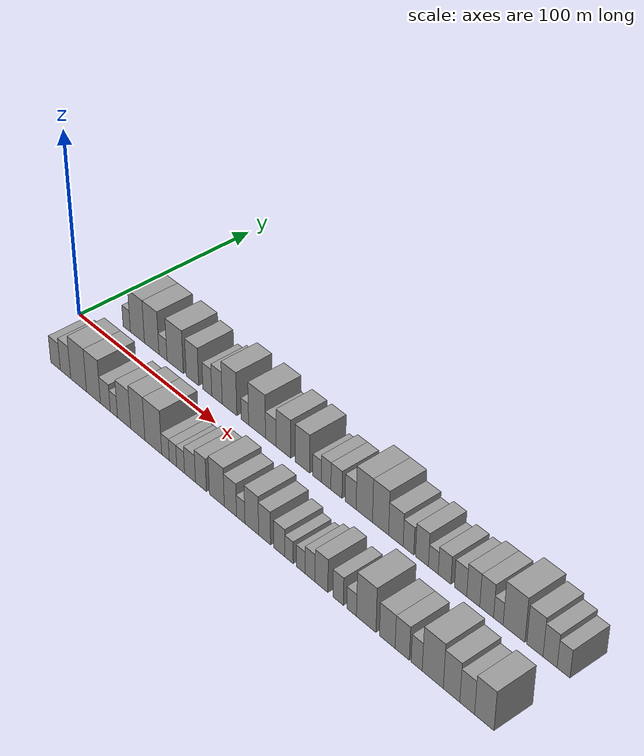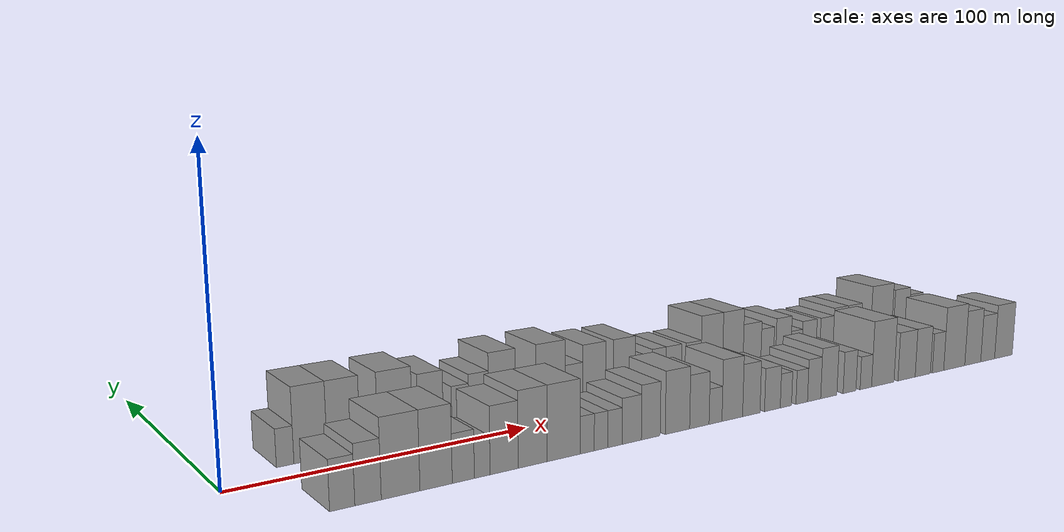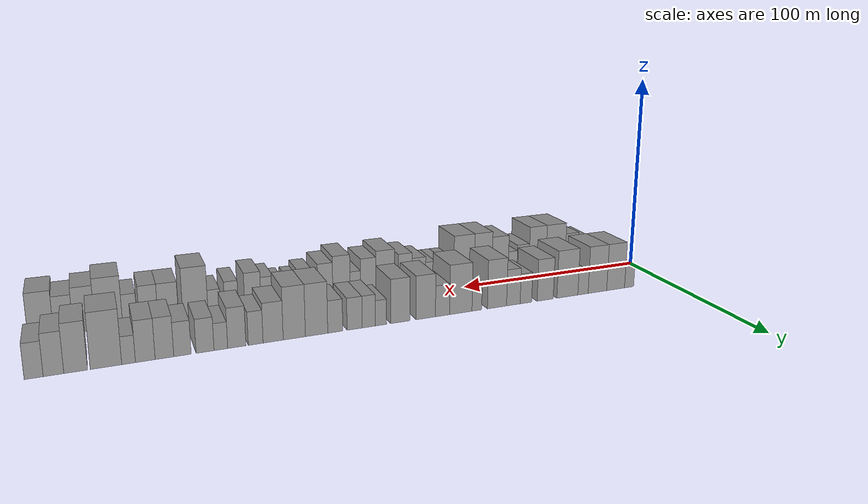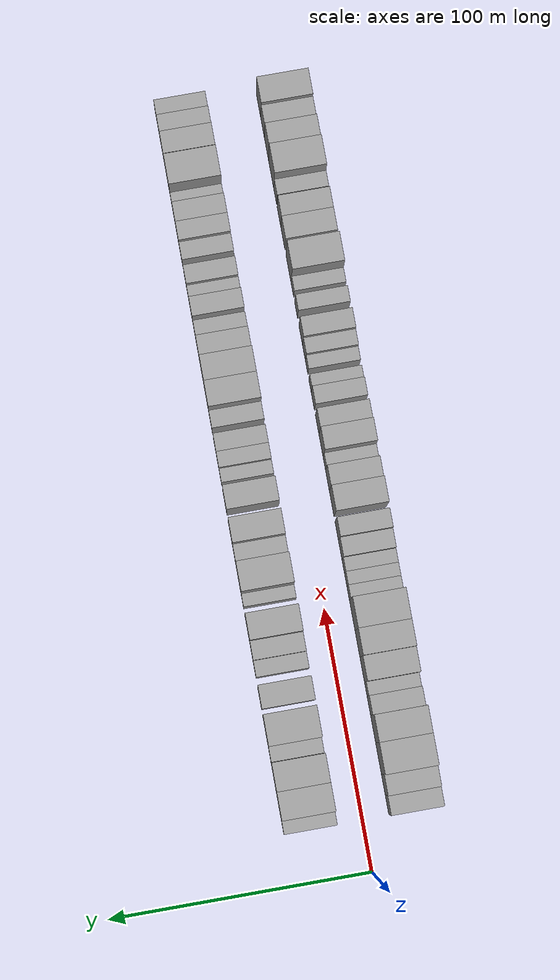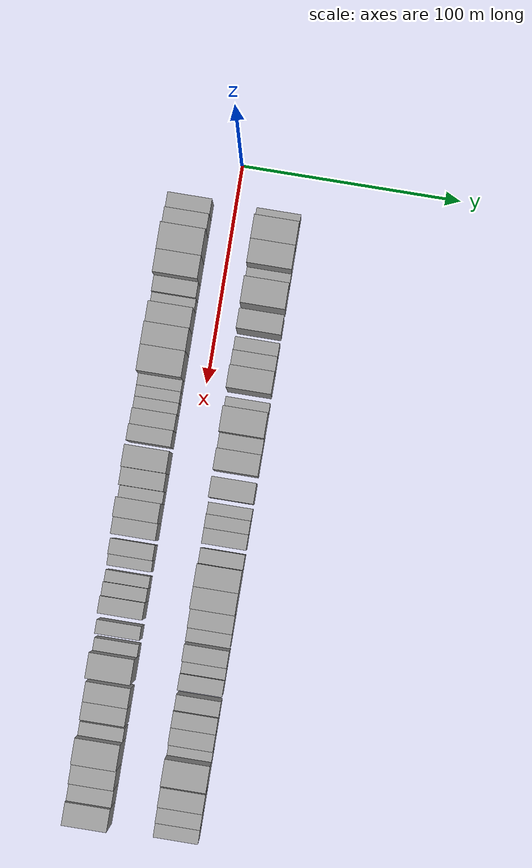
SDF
<sdf version="1.6">
 <world name="default">
  <scene>
   <sky><clouds><speed>12</speed></clouds></sky>
   <ambient>0.4 0.4 0.4 1</ambient>
   <background>0.7 0.7 0.7 1</background>
   <shadows>1</shadows>
  </scene>
  <gravity>0 0 -9.8066</gravity>
  <magnetic_field>6e-06 2.3e-05 -4.2e-05</magnetic_field>
  <physics default="0" name="default_physics" type="ode">
   <ode>
    <solver>
     <type>quick</type>
     <iters>10</iters>
     <sor>1.0</sor>
     <use_dynamic_moi_rescaling>0</use_dynamic_moi_rescaling>
    </solver>
    <constraints>
     <cfm>0</cfm>
     <erp>0.2</erp>
     <contact_max_correcting_vel>100</contact_max_correcting_vel>
     <contact_surface_layer>0.001</contact_surface_layer>
    </constraints>
   </ode>
   <max_step_size>0.004</max_step_size>
   <real_time_factor>1</real_time_factor>
   <real_time_update_rate>250</real_time_update_rate>
  </physics>
  <light name="sun" type="directional">
   <pose>0 0 10 0 0 0</pose>
   <diffuse>0.8 0.8 0.8 1</diffuse>
   <specular>0.2 0.2 0.2 1</specular>
   <attenuation>
    <range>1000</range>
    <constant>0.9</constant>
    <linear>0.01</linear>
    <quadratic>0.001</quadratic>
   </attenuation>
   <direction>-0.5 0.1 -0.9</direction>
  </light>
  <model name="building_1">
   <static>1</static>
   <pose>22.7337 20.0000 0 0.000000 0.000000 1.570796</pose>
   <link name="link">
    <pose>0 0 6.00 0 0 0</pose>
    <collision name="collision"><geometry><box><size>20.0000 5.4673 12.0000</size></box></geometry></collision>
    <visual name="visual">
     <cast_shadows>0</cast_shadows>
     <geometry><box><size>20.0000 5.4673 12.0000</size></box></geometry>
     <material>
      <script>
       <uri>model://grey_wall/materials/scripts</uri>
       <uri>model://grey_wall/materials/textures</uri>
       <name>vrc/grey_wall</name>
      </script>
     </material>
    </visual>
   </link>
  </model>
  <model name="building_2">
   <static>1</static>
   <pose>30.7658 20.0000 0 0.000000 0.000000 1.570796</pose>
   <link name="link">
    <pose>0 0 12.00 0 0 0</pose>
    <collision name="collision"><geometry><box><size>20.0000 10.5969 24.0000</size></box></geometry></collision>
    <visual name="visual">
     <cast_shadows>0</cast_shadows>
     <geometry><box><size>20.0000 10.5969 24.0000</size></box></geometry>
     <material>
      <script>
       <uri>model://grey_wall/materials/scripts</uri>
       <uri>model://grey_wall/materials/textures</uri>
       <name>vrc/grey_wall</name>
      </script>
     </material>
    </visual>
   </link>
  </model>
  <model name="building_3">
   <static>1</static>
   <pose>41.4560 20.0000 0 0.000000 0.000000 1.570796</pose>
   <link name="link">
    <pose>0 0 12.00 0 0 0</pose>
    <collision name="collision"><geometry><box><size>20.0000 10.7837 24.0000</size></box></geometry></collision>
    <visual name="visual">
     <cast_shadows>0</cast_shadows>
     <geometry><box><size>20.0000 10.7837 24.0000</size></box></geometry>
     <material>
      <script>
       <uri>model://grey_wall/materials/scripts</uri>
       <uri>model://grey_wall/materials/textures</uri>
       <name>vrc/grey_wall</name>
      </script>
     </material>
    </visual>
   </link>
  </model>
  <model name="building_4">
   <static>1</static>
   <pose>49.8045 20.0000 0 0.000000 0.000000 1.570796</pose>
   <link name="link">
    <pose>0 0 6.00 0 0 0</pose>
    <collision name="collision"><geometry><box><size>20.0000 5.9133 12.0000</size></box></geometry></collision>
    <visual name="visual">
     <cast_shadows>0</cast_shadows>
     <geometry><box><size>20.0000 5.9133 12.0000</size></box></geometry>
     <material>
      <script>
       <uri>model://grey_wall/materials/scripts</uri>
       <uri>model://grey_wall/materials/textures</uri>
       <name>vrc/grey_wall</name>
      </script>
     </material>
    </visual>
   </link>
  </model>
  <model name="building_5">
   <static>1</static>
   <pose>58.6800 20.0000 0 0.000000 0.000000 1.570796</pose>
   <link name="link">
    <pose>0 0 12.00 0 0 0</pose>
    <collision name="collision"><geometry><box><size>20.0000 11.8378 24.0000</size></box></geometry></collision>
    <visual name="visual">
     <cast_shadows>0</cast_shadows>
     <geometry><box><size>20.0000 11.8378 24.0000</size></box></geometry>
     <material>
      <script>
       <uri>model://grey_wall/materials/scripts</uri>
       <uri>model://grey_wall/materials/textures</uri>
       <name>vrc/grey_wall</name>
      </script>
     </material>
    </visual>
   </link>
  </model>
  <model name="building_6">
   <static>1</static>
   <pose>71.0685 20.0000 0 0.000000 0.000000 1.570796</pose>
   <link name="link">
    <pose>0 0 10.50 0 0 0</pose>
    <collision name="collision"><geometry><box><size>20.0000 8.9391 21.0000</size></box></geometry></collision>
    <visual name="visual">
     <cast_shadows>0</cast_shadows>
     <geometry><box><size>20.0000 8.9391 21.0000</size></box></geometry>
     <material>
      <script>
       <uri>model://grey_wall/materials/scripts</uri>
       <uri>model://grey_wall/materials/textures</uri>
       <name>vrc/grey_wall</name>
      </script>
     </material>
    </visual>
   </link>
  </model>
  <model name="building_7">
   <static>1</static>
   <pose>81.6687 20.0000 0 0.000000 0.000000 1.570796</pose>
   <link name="link">
    <pose>0 0 7.50 0 0 0</pose>
    <collision name="collision"><geometry><box><size>20.0000 6.2614 15.0000</size></box></geometry></collision>
    <visual name="visual">
     <cast_shadows>0</cast_shadows>
     <geometry><box><size>20.0000 6.2614 15.0000</size></box></geometry>
     <material>
      <script>
       <uri>model://grey_wall/materials/scripts</uri>
       <uri>model://grey_wall/materials/textures</uri>
       <name>vrc/grey_wall</name>
      </script>
     </material>
    </visual>
   </link>
  </model>
  <model name="building_8">
   <static>1</static>
   <pose>88.4430 20.0000 0 0.000000 0.000000 1.570796</pose>
   <link name="link">
    <pose>0 0 9.00 0 0 0</pose>
    <collision name="collision"><geometry><box><size>20.0000 7.2872 18.0000</size></box></geometry></collision>
    <visual name="visual">
     <cast_shadows>0</cast_shadows>
     <geometry><box><size>20.0000 7.2872 18.0000</size></box></geometry>
     <material>
      <script>
       <uri>model://grey_wall/materials/scripts</uri>
       <uri>model://grey_wall/materials/textures</uri>
       <name>vrc/grey_wall</name>
      </script>
     </material>
    </visual>
   </link>
  </model>
  <model name="building_9">
   <static>1</static>
   <pose>97.1406 20.0000 0 0.000000 0.000000 1.570796</pose>
   <link name="link">
    <pose>0 0 12.00 0 0 0</pose>
    <collision name="collision"><geometry><box><size>20.0000 10.1078 24.0000</size></box></geometry></collision>
    <visual name="visual">
     <cast_shadows>0</cast_shadows>
     <geometry><box><size>20.0000 10.1078 24.0000</size></box></geometry>
     <material>
      <script>
       <uri>model://grey_wall/materials/scripts</uri>
       <uri>model://grey_wall/materials/textures</uri>
       <name>vrc/grey_wall</name>
      </script>
     </material>
    </visual>
   </link>
  </model>
  <model name="building_10">
   <static>1</static>
   <pose>107.7197 20.0000 0 0.000000 0.000000 1.570796</pose>
   <link name="link">
    <pose>0 0 6.00 0 0 0</pose>
    <collision name="collision"><geometry><box><size>20.0000 5.0505 12.0000</size></box></geometry></collision>
    <visual name="visual">
     <cast_shadows>0</cast_shadows>
     <geometry><box><size>20.0000 5.0505 12.0000</size></box></geometry>
     <material>
      <script>
       <uri>model://grey_wall/materials/scripts</uri>
       <uri>model://grey_wall/materials/textures</uri>
       <name>vrc/grey_wall</name>
      </script>
     </material>
    </visual>
   </link>
  </model>
  <model name="building_11">
   <static>1</static>
   <pose>115.9525 20.0000 0 0.000000 0.000000 1.570796</pose>
   <link name="link">
    <pose>0 0 12.00 0 0 0</pose>
    <collision name="collision"><geometry><box><size>20.0000 11.4151 24.0000</size></box></geometry></collision>
    <visual name="visual">
     <cast_shadows>0</cast_shadows>
     <geometry><box><size>20.0000 11.4151 24.0000</size></box></geometry>
     <material>
      <script>
       <uri>model://grey_wall/materials/scripts</uri>
       <uri>model://grey_wall/materials/textures</uri>
       <name>vrc/grey_wall</name>
      </script>
     </material>
    </visual>
   </link>
  </model>
  <model name="building_12">
   <static>1</static>
   <pose>125.2201 20.0000 0 0.000000 0.000000 1.570796</pose>
   <link name="link">
    <pose>0 0 7.50 0 0 0</pose>
    <collision name="collision"><geometry><box><size>20.0000 7.1200 15.0000</size></box></geometry></collision>
    <visual name="visual">
     <cast_shadows>0</cast_shadows>
     <geometry><box><size>20.0000 7.1200 15.0000</size></box></geometry>
     <material>
      <script>
       <uri>model://grey_wall/materials/scripts</uri>
       <uri>model://grey_wall/materials/textures</uri>
       <name>vrc/grey_wall</name>
      </script>
     </material>
    </visual>
   </link>
  </model>
  <model name="building_13">
   <static>1</static>
   <pose>133.5813 20.0000 0 0.000000 0.000000 1.570796</pose>
   <link name="link">
    <pose>0 0 10.50 0 0 0</pose>
    <collision name="collision"><geometry><box><size>20.0000 9.6024 21.0000</size></box></geometry></collision>
    <visual name="visual">
     <cast_shadows>0</cast_shadows>
     <geometry><box><size>20.0000 9.6024 21.0000</size></box></geometry>
     <material>
      <script>
       <uri>model://grey_wall/materials/scripts</uri>
       <uri>model://grey_wall/materials/textures</uri>
       <name>vrc/grey_wall</name>
      </script>
     </material>
    </visual>
   </link>
  </model>
  <model name="building_14">
   <static>1</static>
   <pose>146.0307 20.0000 0 0.000000 0.000000 1.570796</pose>
   <link name="link">
    <pose>0 0 10.50 0 0 0</pose>
    <collision name="collision"><geometry><box><size>20.0000 9.2964 21.0000</size></box></geometry></collision>
    <visual name="visual">
     <cast_shadows>0</cast_shadows>
     <geometry><box><size>20.0000 9.2964 21.0000</size></box></geometry>
     <material>
      <script>
       <uri>model://grey_wall/materials/scripts</uri>
       <uri>model://grey_wall/materials/textures</uri>
       <name>vrc/grey_wall</name>
      </script>
     </material>
    </visual>
   </link>
  </model>
  <model name="building_15">
   <static>1</static>
   <pose>155.3651 20.0000 0 0.000000 0.000000 1.570796</pose>
   <link name="link">
    <pose>0 0 6.00 0 0 0</pose>
    <collision name="collision"><geometry><box><size>20.0000 5.3725 12.0000</size></box></geometry></collision>
    <visual name="visual">
     <cast_shadows>0</cast_shadows>
     <geometry><box><size>20.0000 5.3725 12.0000</size></box></geometry>
     <material>
      <script>
       <uri>model://grey_wall/materials/scripts</uri>
       <uri>model://grey_wall/materials/textures</uri>
       <name>vrc/grey_wall</name>
      </script>
     </material>
    </visual>
   </link>
  </model>
  <model name="building_16">
   <static>1</static>
   <pose>161.1347 20.0000 0 0.000000 0.000000 1.570796</pose>
   <link name="link">
    <pose>0 0 7.50 0 0 0</pose>
    <collision name="collision"><geometry><box><size>20.0000 6.1667 15.0000</size></box></geometry></collision>
    <visual name="visual">
     <cast_shadows>0</cast_shadows>
     <geometry><box><size>20.0000 6.1667 15.0000</size></box></geometry>
     <material>
      <script>
       <uri>model://grey_wall/materials/scripts</uri>
       <uri>model://grey_wall/materials/textures</uri>
       <name>vrc/grey_wall</name>
      </script>
     </material>
    </visual>
   </link>
  </model>
  <model name="building_17">
   <static>1</static>
   <pose>167.7172 20.0000 0 0.000000 0.000000 1.570796</pose>
   <link name="link">
    <pose>0 0 7.50 0 0 0</pose>
    <collision name="collision"><geometry><box><size>20.0000 6.9982 15.0000</size></box></geometry></collision>
    <visual name="visual">
     <cast_shadows>0</cast_shadows>
     <geometry><box><size>20.0000 6.9982 15.0000</size></box></geometry>
     <material>
      <script>
       <uri>model://grey_wall/materials/scripts</uri>
       <uri>model://grey_wall/materials/textures</uri>
       <name>vrc/grey_wall</name>
      </script>
     </material>
    </visual>
   </link>
  </model>
  <model name="building_18">
   <static>1</static>
   <pose>176.6432 20.0000 0 0.000000 0.000000 1.570796</pose>
   <link name="link">
    <pose>0 0 7.50 0 0 0</pose>
    <collision name="collision"><geometry><box><size>20.0000 6.8539 15.0000</size></box></geometry></collision>
    <visual name="visual">
     <cast_shadows>0</cast_shadows>
     <geometry><box><size>20.0000 6.8539 15.0000</size></box></geometry>
     <material>
      <script>
       <uri>model://grey_wall/materials/scripts</uri>
       <uri>model://grey_wall/materials/textures</uri>
       <name>vrc/grey_wall</name>
      </script>
     </material>
    </visual>
   </link>
  </model>
  <model name="building_19">
   <static>1</static>
   <pose>185.0944 20.0000 0 0.000000 0.000000 1.570796</pose>
   <link name="link">
    <pose>0 0 12.00 0 0 0</pose>
    <collision name="collision"><geometry><box><size>20.0000 10.0486 24.0000</size></box></geometry></collision>
    <visual name="visual">
     <cast_shadows>0</cast_shadows>
     <geometry><box><size>20.0000 10.0486 24.0000</size></box></geometry>
     <material>
      <script>
       <uri>model://grey_wall/materials/scripts</uri>
       <uri>model://grey_wall/materials/textures</uri>
       <name>vrc/grey_wall</name>
      </script>
     </material>
    </visual>
   </link>
  </model>
  <model name="building_20">
   <static>1</static>
   <pose>195.0216 20.0000 0 0.000000 0.000000 1.570796</pose>
   <link name="link">
    <pose>0 0 12.00 0 0 0</pose>
    <collision name="collision"><geometry><box><size>20.0000 9.8058 24.0000</size></box></geometry></collision>
    <visual name="visual">
     <cast_shadows>0</cast_shadows>
     <geometry><box><size>20.0000 9.8058 24.0000</size></box></geometry>
     <material>
      <script>
       <uri>model://grey_wall/materials/scripts</uri>
       <uri>model://grey_wall/materials/textures</uri>
       <name>vrc/grey_wall</name>
      </script>
     </material>
    </visual>
   </link>
  </model>
  <model name="building_21">
   <static>1</static>
   <pose>204.2765 20.0000 0 0.000000 0.000000 1.570796</pose>
   <link name="link">
    <pose>0 0 9.00 0 0 0</pose>
    <collision name="collision"><geometry><box><size>20.0000 8.7040 18.0000</size></box></geometry></collision>
    <visual name="visual">
     <cast_shadows>0</cast_shadows>
     <geometry><box><size>20.0000 8.7040 18.0000</size></box></geometry>
     <material>
      <script>
       <uri>model://grey_wall/materials/scripts</uri>
       <uri>model://grey_wall/materials/textures</uri>
       <name>vrc/grey_wall</name>
      </script>
     </material>
    </visual>
   </link>
  </model>
  <model name="building_22">
   <static>1</static>
   <pose>211.7917 20.0000 0 0.000000 0.000000 1.570796</pose>
   <link name="link">
    <pose>0 0 7.50 0 0 0</pose>
    <collision name="collision"><geometry><box><size>20.0000 6.3265 15.0000</size></box></geometry></collision>
    <visual name="visual">
     <cast_shadows>0</cast_shadows>
     <geometry><box><size>20.0000 6.3265 15.0000</size></box></geometry>
     <material>
      <script>
       <uri>model://grey_wall/materials/scripts</uri>
       <uri>model://grey_wall/materials/textures</uri>
       <name>vrc/grey_wall</name>
      </script>
     </material>
    </visual>
   </link>
  </model>
  <model name="building_23">
   <static>1</static>
   <pose>219.7814 20.0000 0 0.000000 0.000000 1.570796</pose>
   <link name="link">
    <pose>0 0 9.00 0 0 0</pose>
    <collision name="collision"><geometry><box><size>20.0000 7.6528 18.0000</size></box></geometry></collision>
    <visual name="visual">
     <cast_shadows>0</cast_shadows>
     <geometry><box><size>20.0000 7.6528 18.0000</size></box></geometry>
     <material>
      <script>
       <uri>model://grey_wall/materials/scripts</uri>
       <uri>model://grey_wall/materials/textures</uri>
       <name>vrc/grey_wall</name>
      </script>
     </material>
    </visual>
   </link>
  </model>
  <model name="building_24">
   <static>1</static>
   <pose>226.4473 20.0000 0 0.000000 0.000000 1.570796</pose>
   <link name="link">
    <pose>0 0 6.00 0 0 0</pose>
    <collision name="collision"><geometry><box><size>20.0000 5.6790 12.0000</size></box></geometry></collision>
    <visual name="visual">
     <cast_shadows>0</cast_shadows>
     <geometry><box><size>20.0000 5.6790 12.0000</size></box></geometry>
     <material>
      <script>
       <uri>model://grey_wall/materials/scripts</uri>
       <uri>model://grey_wall/materials/textures</uri>
       <name>vrc/grey_wall</name>
      </script>
     </material>
    </visual>
   </link>
  </model>
  <model name="building_25">
   <static>1</static>
   <pose>232.9609 20.0000 0 0.000000 0.000000 1.570796</pose>
   <link name="link">
    <pose>0 0 7.50 0 0 0</pose>
    <collision name="collision"><geometry><box><size>20.0000 7.3481 15.0000</size></box></geometry></collision>
    <visual name="visual">
     <cast_shadows>0</cast_shadows>
     <geometry><box><size>20.0000 7.3481 15.0000</size></box></geometry>
     <material>
      <script>
       <uri>model://grey_wall/materials/scripts</uri>
       <uri>model://grey_wall/materials/textures</uri>
       <name>vrc/grey_wall</name>
      </script>
     </material>
    </visual>
   </link>
  </model>
  <model name="building_26">
   <static>1</static>
   <pose>242.1310 20.0000 0 0.000000 0.000000 1.570796</pose>
   <link name="link">
    <pose>0 0 7.50 0 0 0</pose>
    <collision name="collision"><geometry><box><size>20.0000 6.9921 15.0000</size></box></geometry></collision>
    <visual name="visual">
     <cast_shadows>0</cast_shadows>
     <geometry><box><size>20.0000 6.9921 15.0000</size></box></geometry>
     <material>
      <script>
       <uri>model://grey_wall/materials/scripts</uri>
       <uri>model://grey_wall/materials/textures</uri>
       <name>vrc/grey_wall</name>
      </script>
     </material>
    </visual>
   </link>
  </model>
  <model name="building_27">
   <static>1</static>
   <pose>249.3128 20.0000 0 0.000000 0.000000 1.570796</pose>
   <link name="link">
    <pose>0 0 9.00 0 0 0</pose>
    <collision name="collision"><geometry><box><size>20.0000 7.3713 18.0000</size></box></geometry></collision>
    <visual name="visual">
     <cast_shadows>0</cast_shadows>
     <geometry><box><size>20.0000 7.3713 18.0000</size></box></geometry>
     <material>
      <script>
       <uri>model://grey_wall/materials/scripts</uri>
       <uri>model://grey_wall/materials/textures</uri>
       <name>vrc/grey_wall</name>
      </script>
     </material>
    </visual>
   </link>
  </model>
  <model name="building_28">
   <static>1</static>
   <pose>256.8416 20.0000 0 0.000000 0.000000 1.570796</pose>
   <link name="link">
    <pose>0 0 9.00 0 0 0</pose>
    <collision name="collision"><geometry><box><size>20.0000 7.6865 18.0000</size></box></geometry></collision>
    <visual name="visual">
     <cast_shadows>0</cast_shadows>
     <geometry><box><size>20.0000 7.6865 18.0000</size></box></geometry>
     <material>
      <script>
       <uri>model://grey_wall/materials/scripts</uri>
       <uri>model://grey_wall/materials/textures</uri>
       <name>vrc/grey_wall</name>
      </script>
     </material>
    </visual>
   </link>
  </model>
  <model name="building_29">
   <static>1</static>
   <pose>263.3319 20.0000 0 0.000000 0.000000 1.570796</pose>
   <link name="link">
    <pose>0 0 6.00 0 0 0</pose>
    <collision name="collision"><geometry><box><size>20.0000 5.2941 12.0000</size></box></geometry></collision>
    <visual name="visual">
     <cast_shadows>0</cast_shadows>
     <geometry><box><size>20.0000 5.2941 12.0000</size></box></geometry>
     <material>
      <script>
       <uri>model://grey_wall/materials/scripts</uri>
       <uri>model://grey_wall/materials/textures</uri>
       <name>vrc/grey_wall</name>
      </script>
     </material>
    </visual>
   </link>
  </model>
  <model name="building_30">
   <static>1</static>
   <pose>271.9318 20.0000 0 0.000000 0.000000 1.570796</pose>
   <link name="link">
    <pose>0 0 12.00 0 0 0</pose>
    <collision name="collision"><geometry><box><size>20.0000 11.9057 24.0000</size></box></geometry></collision>
    <visual name="visual">
     <cast_shadows>0</cast_shadows>
     <geometry><box><size>20.0000 11.9057 24.0000</size></box></geometry>
     <material>
      <script>
       <uri>model://grey_wall/materials/scripts</uri>
       <uri>model://grey_wall/materials/textures</uri>
       <name>vrc/grey_wall</name>
      </script>
     </material>
    </visual>
   </link>
  </model>
  <model name="building_31">
   <static>1</static>
   <pose>283.2652 20.0000 0 0.000000 0.000000 1.570796</pose>
   <link name="link">
    <pose>0 0 10.50 0 0 0</pose>
    <collision name="collision"><geometry><box><size>20.0000 8.7612 21.0000</size></box></geometry></collision>
    <visual name="visual">
     <cast_shadows>0</cast_shadows>
     <geometry><box><size>20.0000 8.7612 21.0000</size></box></geometry>
     <material>
      <script>
       <uri>model://grey_wall/materials/scripts</uri>
       <uri>model://grey_wall/materials/textures</uri>
       <name>vrc/grey_wall</name>
      </script>
     </material>
    </visual>
   </link>
  </model>
  <model name="building_32">
   <static>1</static>
   <pose>291.3849 20.0000 0 0.000000 0.000000 1.570796</pose>
   <link name="link">
    <pose>0 0 9.00 0 0 0</pose>
    <collision name="collision"><geometry><box><size>20.0000 7.4781 18.0000</size></box></geometry></collision>
    <visual name="visual">
     <cast_shadows>0</cast_shadows>
     <geometry><box><size>20.0000 7.4781 18.0000</size></box></geometry>
     <material>
      <script>
       <uri>model://grey_wall/materials/scripts</uri>
       <uri>model://grey_wall/materials/textures</uri>
       <name>vrc/grey_wall</name>
      </script>
     </material>
    </visual>
   </link>
  </model>
  <model name="building_33">
   <static>1</static>
   <pose>298.5321 20.0000 0 0.000000 0.000000 1.570796</pose>
   <link name="link">
    <pose>0 0 7.50 0 0 0</pose>
    <collision name="collision"><geometry><box><size>20.0000 6.8162 15.0000</size></box></geometry></collision>
    <visual name="visual">
     <cast_shadows>0</cast_shadows>
     <geometry><box><size>20.0000 6.8162 15.0000</size></box></geometry>
     <material>
      <script>
       <uri>model://grey_wall/materials/scripts</uri>
       <uri>model://grey_wall/materials/textures</uri>
       <name>vrc/grey_wall</name>
      </script>
     </material>
    </visual>
   </link>
  </model>
  <model name="building_34">
   <static>1</static>
   <pose>23.6889 -20.0000 0 0.000000 0.000000 1.570796</pose>
   <link name="link">
    <pose>0 0 7.50 0 0 0</pose>
    <collision name="collision"><geometry><box><size>20.0000 7.3778 15.0000</size></box></geometry></collision>
    <visual name="visual">
     <cast_shadows>0</cast_shadows>
     <geometry><box><size>20.0000 7.3778 15.0000</size></box></geometry>
     <material>
      <script>
       <uri>model://grey_wall/materials/scripts</uri>
       <uri>model://grey_wall/materials/textures</uri>
       <name>vrc/grey_wall</name>
      </script>
     </material>
    </visual>
   </link>
  </model>
  <model name="building_35">
   <static>1</static>
   <pose>31.3292 -20.0000 0 0.000000 0.000000 1.570796</pose>
   <link name="link">
    <pose>0 0 9.00 0 0 0</pose>
    <collision name="collision"><geometry><box><size>20.0000 7.9028 18.0000</size></box></geometry></collision>
    <visual name="visual">
     <cast_shadows>0</cast_shadows>
     <geometry><box><size>20.0000 7.9028 18.0000</size></box></geometry>
     <material>
      <script>
       <uri>model://grey_wall/materials/scripts</uri>
       <uri>model://grey_wall/materials/textures</uri>
       <name>vrc/grey_wall</name>
      </script>
     </material>
    </visual>
   </link>
  </model>
  <model name="building_36">
   <static>1</static>
   <pose>41.2298 -20.0000 0 0.000000 0.000000 1.570796</pose>
   <link name="link">
    <pose>0 0 12.00 0 0 0</pose>
    <collision name="collision"><geometry><box><size>20.0000 11.8984 24.0000</size></box></geometry></collision>
    <visual name="visual">
     <cast_shadows>0</cast_shadows>
     <geometry><box><size>20.0000 11.8984 24.0000</size></box></geometry>
     <material>
      <script>
       <uri>model://grey_wall/materials/scripts</uri>
       <uri>model://grey_wall/materials/textures</uri>
       <name>vrc/grey_wall</name>
      </script>
     </material>
    </visual>
   </link>
  </model>
  <model name="building_37">
   <static>1</static>
   <pose>52.3136 -20.0000 0 0.000000 0.000000 1.570796</pose>
   <link name="link">
    <pose>0 0 12.00 0 0 0</pose>
    <collision name="collision"><geometry><box><size>20.0000 10.2692 24.0000</size></box></geometry></collision>
    <visual name="visual">
     <cast_shadows>0</cast_shadows>
     <geometry><box><size>20.0000 10.2692 24.0000</size></box></geometry>
     <material>
      <script>
       <uri>model://grey_wall/materials/scripts</uri>
       <uri>model://grey_wall/materials/textures</uri>
       <name>vrc/grey_wall</name>
      </script>
     </material>
    </visual>
   </link>
  </model>
  <model name="building_38">
   <static>1</static>
   <pose>61.0539 -20.0000 0 0.000000 0.000000 1.570796</pose>
   <link name="link">
    <pose>0 0 7.50 0 0 0</pose>
    <collision name="collision"><geometry><box><size>20.0000 7.2115 15.0000</size></box></geometry></collision>
    <visual name="visual">
     <cast_shadows>0</cast_shadows>
     <geometry><box><size>20.0000 7.2115 15.0000</size></box></geometry>
     <material>
      <script>
       <uri>model://grey_wall/materials/scripts</uri>
       <uri>model://grey_wall/materials/textures</uri>
       <name>vrc/grey_wall</name>
      </script>
     </material>
    </visual>
   </link>
  </model>
  <model name="building_39">
   <static>1</static>
   <pose>67.2679 -20.0000 0 0.000000 0.000000 1.570796</pose>
   <link name="link">
    <pose>0 0 6.00 0 0 0</pose>
    <collision name="collision"><geometry><box><size>20.0000 5.2165 12.0000</size></box></geometry></collision>
    <visual name="visual">
     <cast_shadows>0</cast_shadows>
     <geometry><box><size>20.0000 5.2165 12.0000</size></box></geometry>
     <material>
      <script>
       <uri>model://grey_wall/materials/scripts</uri>
       <uri>model://grey_wall/materials/textures</uri>
       <name>vrc/grey_wall</name>
      </script>
     </material>
    </visual>
   </link>
  </model>
  <model name="building_40">
   <static>1</static>
   <pose>74.6307 -20.0000 0 0.000000 0.000000 1.570796</pose>
   <link name="link">
    <pose>0 0 10.50 0 0 0</pose>
    <collision name="collision"><geometry><box><size>20.0000 9.5090 21.0000</size></box></geometry></collision>
    <visual name="visual">
     <cast_shadows>0</cast_shadows>
     <geometry><box><size>20.0000 9.5090 21.0000</size></box></geometry>
     <material>
      <script>
       <uri>model://grey_wall/materials/scripts</uri>
       <uri>model://grey_wall/materials/textures</uri>
       <name>vrc/grey_wall</name>
      </script>
     </material>
    </visual>
   </link>
  </model>
  <model name="building_41">
   <static>1</static>
   <pose>84.4495 -20.0000 0 0.000000 0.000000 1.570796</pose>
   <link name="link">
    <pose>0 0 12.00 0 0 0</pose>
    <collision name="collision"><geometry><box><size>20.0000 10.1286 24.0000</size></box></geometry></collision>
    <visual name="visual">
     <cast_shadows>0</cast_shadows>
     <geometry><box><size>20.0000 10.1286 24.0000</size></box></geometry>
     <material>
      <script>
       <uri>model://grey_wall/materials/scripts</uri>
       <uri>model://grey_wall/materials/textures</uri>
       <name>vrc/grey_wall</name>
      </script>
     </material>
    </visual>
   </link>
  </model>
  <model name="building_42">
   <static>1</static>
   <pose>95.3755 -20.0000 0 0.000000 0.000000 1.570796</pose>
   <link name="link">
    <pose>0 0 12.00 0 0 0</pose>
    <collision name="collision"><geometry><box><size>20.0000 11.7234 24.0000</size></box></geometry></collision>
    <visual name="visual">
     <cast_shadows>0</cast_shadows>
     <geometry><box><size>20.0000 11.7234 24.0000</size></box></geometry>
     <material>
      <script>
       <uri>model://grey_wall/materials/scripts</uri>
       <uri>model://grey_wall/materials/textures</uri>
       <name>vrc/grey_wall</name>
      </script>
     </material>
    </visual>
   </link>
  </model>
  <model name="building_43">
   <static>1</static>
   <pose>103.8726 -20.0000 0 0.000000 0.000000 1.570796</pose>
   <link name="link">
    <pose>0 0 6.00 0 0 0</pose>
    <collision name="collision"><geometry><box><size>20.0000 5.2709 12.0000</size></box></geometry></collision>
    <visual name="visual">
     <cast_shadows>0</cast_shadows>
     <geometry><box><size>20.0000 5.2709 12.0000</size></box></geometry>
     <material>
      <script>
       <uri>model://grey_wall/materials/scripts</uri>
       <uri>model://grey_wall/materials/textures</uri>
       <name>vrc/grey_wall</name>
      </script>
     </material>
    </visual>
   </link>
  </model>
  <model name="building_44">
   <static>1</static>
   <pose>109.0506 -20.0000 0 0.000000 0.000000 1.570796</pose>
   <link name="link">
    <pose>0 0 6.00 0 0 0</pose>
    <collision name="collision"><geometry><box><size>20.0000 5.0851 12.0000</size></box></geometry></collision>
    <visual name="visual">
     <cast_shadows>0</cast_shadows>
     <geometry><box><size>20.0000 5.0851 12.0000</size></box></geometry>
     <material>
      <script>
       <uri>model://grey_wall/materials/scripts</uri>
       <uri>model://grey_wall/materials/textures</uri>
       <name>vrc/grey_wall</name>
      </script>
     </material>
    </visual>
   </link>
  </model>
  <model name="building_45">
   <static>1</static>
   <pose>114.2787 -20.0000 0 0.000000 0.000000 1.570796</pose>
   <link name="link">
    <pose>0 0 6.00 0 0 0</pose>
    <collision name="collision"><geometry><box><size>20.0000 5.3710 12.0000</size></box></geometry></collision>
    <visual name="visual">
     <cast_shadows>0</cast_shadows>
     <geometry><box><size>20.0000 5.3710 12.0000</size></box></geometry>
     <material>
      <script>
       <uri>model://grey_wall/materials/scripts</uri>
       <uri>model://grey_wall/materials/textures</uri>
       <name>vrc/grey_wall</name>
      </script>
     </material>
    </visual>
   </link>
  </model>
  <model name="building_46">
   <static>1</static>
   <pose>120.6586 -20.0000 0 0.000000 0.000000 1.570796</pose>
   <link name="link">
    <pose>0 0 7.50 0 0 0</pose>
    <collision name="collision"><geometry><box><size>20.0000 7.3889 15.0000</size></box></geometry></collision>
    <visual name="visual">
     <cast_shadows>0</cast_shadows>
     <geometry><box><size>20.0000 7.3889 15.0000</size></box></geometry>
     <material>
      <script>
       <uri>model://grey_wall/materials/scripts</uri>
       <uri>model://grey_wall/materials/textures</uri>
       <name>vrc/grey_wall</name>
      </script>
     </material>
    </visual>
   </link>
  </model>
  <model name="building_47">
   <static>1</static>
   <pose>128.0381 -20.0000 0 0.000000 0.000000 1.570796</pose>
   <link name="link">
    <pose>0 0 9.00 0 0 0</pose>
    <collision name="collision"><geometry><box><size>20.0000 7.3701 18.0000</size></box></geometry></collision>
    <visual name="visual">
     <cast_shadows>0</cast_shadows>
     <geometry><box><size>20.0000 7.3701 18.0000</size></box></geometry>
     <material>
      <script>
       <uri>model://grey_wall/materials/scripts</uri>
       <uri>model://grey_wall/materials/textures</uri>
       <name>vrc/grey_wall</name>
      </script>
     </material>
    </visual>
   </link>
  </model>
  <model name="building_48">
   <static>1</static>
   <pose>138.6383 -20.0000 0 0.000000 0.000000 1.570796</pose>
   <link name="link">
    <pose>0 0 10.50 0 0 0</pose>
    <collision name="collision"><geometry><box><size>20.0000 9.8302 21.0000</size></box></geometry></collision>
    <visual name="visual">
     <cast_shadows>0</cast_shadows>
     <geometry><box><size>20.0000 9.8302 21.0000</size></box></geometry>
     <material>
      <script>
       <uri>model://grey_wall/materials/scripts</uri>
       <uri>model://grey_wall/materials/textures</uri>
       <name>vrc/grey_wall</name>
      </script>
     </material>
    </visual>
   </link>
  </model>
  <model name="building_49">
   <static>1</static>
   <pose>147.5614 -20.0000 0 0.000000 0.000000 1.570796</pose>
   <link name="link">
    <pose>0 0 9.00 0 0 0</pose>
    <collision name="collision"><geometry><box><size>20.0000 8.0161 18.0000</size></box></geometry></collision>
    <visual name="visual">
     <cast_shadows>0</cast_shadows>
     <geometry><box><size>20.0000 8.0161 18.0000</size></box></geometry>
     <material>
      <script>
       <uri>model://grey_wall/materials/scripts</uri>
       <uri>model://grey_wall/materials/textures</uri>
       <name>vrc/grey_wall</name>
      </script>
     </material>
    </visual>
   </link>
  </model>
  <model name="building_50">
   <static>1</static>
   <pose>154.2818 -20.0000 0 0.000000 0.000000 1.570796</pose>
   <link name="link">
    <pose>0 0 6.00 0 0 0</pose>
    <collision name="collision"><geometry><box><size>20.0000 5.4246 12.0000</size></box></geometry></collision>
    <visual name="visual">
     <cast_shadows>0</cast_shadows>
     <geometry><box><size>20.0000 5.4246 12.0000</size></box></geometry>
     <material>
      <script>
       <uri>model://grey_wall/materials/scripts</uri>
       <uri>model://grey_wall/materials/textures</uri>
       <name>vrc/grey_wall</name>
      </script>
     </material>
    </visual>
   </link>
  </model>
  <model name="building_51">
   <static>1</static>
   <pose>161.3955 -20.0000 0 0.000000 0.000000 1.570796</pose>
   <link name="link">
    <pose>0 0 10.50 0 0 0</pose>
    <collision name="collision"><geometry><box><size>20.0000 8.8027 21.0000</size></box></geometry></collision>
    <visual name="visual">
     <cast_shadows>0</cast_shadows>
     <geometry><box><size>20.0000 8.8027 21.0000</size></box></geometry>
     <material>
      <script>
       <uri>model://grey_wall/materials/scripts</uri>
       <uri>model://grey_wall/materials/textures</uri>
       <name>vrc/grey_wall</name>
      </script>
     </material>
    </visual>
   </link>
  </model>
  <model name="building_52">
   <static>1</static>
   <pose>169.5851 -20.0000 0 0.000000 0.000000 1.570796</pose>
   <link name="link">
    <pose>0 0 9.00 0 0 0</pose>
    <collision name="collision"><geometry><box><size>20.0000 7.5765 18.0000</size></box></geometry></collision>
    <visual name="visual">
     <cast_shadows>0</cast_shadows>
     <geometry><box><size>20.0000 7.5765 18.0000</size></box></geometry>
     <material>
      <script>
       <uri>model://grey_wall/materials/scripts</uri>
       <uri>model://grey_wall/materials/textures</uri>
       <name>vrc/grey_wall</name>
      </script>
     </material>
    </visual>
   </link>
  </model>
  <model name="building_53">
   <static>1</static>
   <pose>178.8874 -20.0000 0 0.000000 0.000000 1.570796</pose>
   <link name="link">
    <pose>0 0 7.50 0 0 0</pose>
    <collision name="collision"><geometry><box><size>20.0000 7.0282 15.0000</size></box></geometry></collision>
    <visual name="visual">
     <cast_shadows>0</cast_shadows>
     <geometry><box><size>20.0000 7.0282 15.0000</size></box></geometry>
     <material>
      <script>
       <uri>model://grey_wall/materials/scripts</uri>
       <uri>model://grey_wall/materials/textures</uri>
       <name>vrc/grey_wall</name>
      </script>
     </material>
    </visual>
   </link>
  </model>
  <model name="building_54">
   <static>1</static>
   <pose>184.9580 -20.0000 0 0.000000 0.000000 1.570796</pose>
   <link name="link">
    <pose>0 0 6.00 0 0 0</pose>
    <collision name="collision"><geometry><box><size>20.0000 5.1129 12.0000</size></box></geometry></collision>
    <visual name="visual">
     <cast_shadows>0</cast_shadows>
     <geometry><box><size>20.0000 5.1129 12.0000</size></box></geometry>
     <material>
      <script>
       <uri>model://grey_wall/materials/scripts</uri>
       <uri>model://grey_wall/materials/textures</uri>
       <name>vrc/grey_wall</name>
      </script>
     </material>
    </visual>
   </link>
  </model>
  <model name="building_55">
   <static>1</static>
   <pose>192.1785 -20.0000 0 0.000000 0.000000 1.570796</pose>
   <link name="link">
    <pose>0 0 6.00 0 0 0</pose>
    <collision name="collision"><geometry><box><size>20.0000 5.3281 12.0000</size></box></geometry></collision>
    <visual name="visual">
     <cast_shadows>0</cast_shadows>
     <geometry><box><size>20.0000 5.3281 12.0000</size></box></geometry>
     <material>
      <script>
       <uri>model://grey_wall/materials/scripts</uri>
       <uri>model://grey_wall/materials/textures</uri>
       <name>vrc/grey_wall</name>
      </script>
     </material>
    </visual>
   </link>
  </model>
  <model name="building_56">
   <static>1</static>
   <pose>197.9270 -20.0000 0 0.000000 0.000000 1.570796</pose>
   <link name="link">
    <pose>0 0 7.50 0 0 0</pose>
    <collision name="collision"><geometry><box><size>20.0000 6.1690 15.0000</size></box></geometry></collision>
    <visual name="visual">
     <cast_shadows>0</cast_shadows>
     <geometry><box><size>20.0000 6.1690 15.0000</size></box></geometry>
     <material>
      <script>
       <uri>model://grey_wall/materials/scripts</uri>
       <uri>model://grey_wall/materials/textures</uri>
       <name>vrc/grey_wall</name>
      </script>
     </material>
    </visual>
   </link>
  </model>
  <model name="building_57">
   <static>1</static>
   <pose>204.8581 -20.0000 0 0.000000 0.000000 1.570796</pose>
   <link name="link">
    <pose>0 0 9.00 0 0 0</pose>
    <collision name="collision"><geometry><box><size>20.0000 7.6932 18.0000</size></box></geometry></collision>
    <visual name="visual">
     <cast_shadows>0</cast_shadows>
     <geometry><box><size>20.0000 7.6932 18.0000</size></box></geometry>
     <material>
      <script>
       <uri>model://grey_wall/materials/scripts</uri>
       <uri>model://grey_wall/materials/textures</uri>
       <name>vrc/grey_wall</name>
      </script>
     </material>
    </visual>
   </link>
  </model>
  <model name="building_58">
   <static>1</static>
   <pose>214.8373 -20.0000 0 0.000000 0.000000 1.570796</pose>
   <link name="link">
    <pose>0 0 7.50 0 0 0</pose>
    <collision name="collision"><geometry><box><size>20.0000 6.2652 15.0000</size></box></geometry></collision>
    <visual name="visual">
     <cast_shadows>0</cast_shadows>
     <geometry><box><size>20.0000 6.2652 15.0000</size></box></geometry>
     <material>
      <script>
       <uri>model://grey_wall/materials/scripts</uri>
       <uri>model://grey_wall/materials/textures</uri>
       <name>vrc/grey_wall</name>
      </script>
     </material>
    </visual>
   </link>
  </model>
  <model name="building_59">
   <static>1</static>
   <pose>222.8343 -20.0000 0 0.000000 0.000000 1.570796</pose>
   <link name="link">
    <pose>0 0 6.00 0 0 0</pose>
    <collision name="collision"><geometry><box><size>20.0000 5.7290 12.0000</size></box></geometry></collision>
    <visual name="visual">
     <cast_shadows>0</cast_shadows>
     <geometry><box><size>20.0000 5.7290 12.0000</size></box></geometry>
     <material>
      <script>
       <uri>model://grey_wall/materials/scripts</uri>
       <uri>model://grey_wall/materials/textures</uri>
       <name>vrc/grey_wall</name>
      </script>
     </material>
    </visual>
   </link>
  </model>
  <model name="building_60">
   <static>1</static>
   <pose>231.3630 -20.0000 0 0.000000 0.000000 1.570796</pose>
   <link name="link">
    <pose>0 0 12.00 0 0 0</pose>
    <collision name="collision"><geometry><box><size>20.0000 11.3284 24.0000</size></box></geometry></collision>
    <visual name="visual">
     <cast_shadows>0</cast_shadows>
     <geometry><box><size>20.0000 11.3284 24.0000</size></box></geometry>
     <material>
      <script>
       <uri>model://grey_wall/materials/scripts</uri>
       <uri>model://grey_wall/materials/textures</uri>
       <name>vrc/grey_wall</name>
      </script>
     </material>
    </visual>
   </link>
  </model>
  <model name="building_61">
   <static>1</static>
   <pose>243.5149 -20.0000 0 0.000000 0.000000 1.570796</pose>
   <link name="link">
    <pose>0 0 9.00 0 0 0</pose>
    <collision name="collision"><geometry><box><size>20.0000 8.9752 18.0000</size></box></geometry></collision>
    <visual name="visual">
     <cast_shadows>0</cast_shadows>
     <geometry><box><size>20.0000 8.9752 18.0000</size></box></geometry>
     <material>
      <script>
       <uri>model://grey_wall/materials/scripts</uri>
       <uri>model://grey_wall/materials/textures</uri>
       <name>vrc/grey_wall</name>
      </script>
     </material>
    </visual>
   </link>
  </model>
  <model name="building_62">
   <static>1</static>
   <pose>252.0324 -20.0000 0 0.000000 0.000000 1.570796</pose>
   <link name="link">
    <pose>0 0 9.00 0 0 0</pose>
    <collision name="collision"><geometry><box><size>20.0000 8.0598 18.0000</size></box></geometry></collision>
    <visual name="visual">
     <cast_shadows>0</cast_shadows>
     <geometry><box><size>20.0000 8.0598 18.0000</size></box></geometry>
     <material>
      <script>
       <uri>model://grey_wall/materials/scripts</uri>
       <uri>model://grey_wall/materials/textures</uri>
       <name>vrc/grey_wall</name>
      </script>
     </material>
    </visual>
   </link>
  </model>
  <model name="building_63">
   <static>1</static>
   <pose>260.1530 -20.0000 0 0.000000 0.000000 1.570796</pose>
   <link name="link">
    <pose>0 0 7.50 0 0 0</pose>
    <collision name="collision"><geometry><box><size>20.0000 6.1815 15.0000</size></box></geometry></collision>
    <visual name="visual">
     <cast_shadows>0</cast_shadows>
     <geometry><box><size>20.0000 6.1815 15.0000</size></box></geometry>
     <material>
      <script>
       <uri>model://grey_wall/materials/scripts</uri>
       <uri>model://grey_wall/materials/textures</uri>
       <name>vrc/grey_wall</name>
      </script>
     </material>
    </visual>
   </link>
  </model>
  <model name="building_64">
   <static>1</static>
   <pose>269.0494 -20.0000 0 0.000000 0.000000 1.570796</pose>
   <link name="link">
    <pose>0 0 12.00 0 0 0</pose>
    <collision name="collision"><geometry><box><size>20.0000 11.6114 24.0000</size></box></geometry></collision>
    <visual name="visual">
     <cast_shadows>0</cast_shadows>
     <geometry><box><size>20.0000 11.6114 24.0000</size></box></geometry>
     <material>
      <script>
       <uri>model://grey_wall/materials/scripts</uri>
       <uri>model://grey_wall/materials/textures</uri>
       <name>vrc/grey_wall</name>
      </script>
     </material>
    </visual>
   </link>
  </model>
  <model name="building_65">
   <static>1</static>
   <pose>279.3371 -20.0000 0 0.000000 0.000000 1.570796</pose>
   <link name="link">
    <pose>0 0 10.50 0 0 0</pose>
    <collision name="collision"><geometry><box><size>20.0000 8.9640 21.0000</size></box></geometry></collision>
    <visual name="visual">
     <cast_shadows>0</cast_shadows>
     <geometry><box><size>20.0000 8.9640 21.0000</size></box></geometry>
     <material>
      <script>
       <uri>model://grey_wall/materials/scripts</uri>
       <uri>model://grey_wall/materials/textures</uri>
       <name>vrc/grey_wall</name>
      </script>
     </material>
    </visual>
   </link>
  </model>
  <model name="building_66">
   <static>1</static>
   <pose>287.8031 -20.0000 0 0.000000 0.000000 1.570796</pose>
   <link name="link">
    <pose>0 0 9.00 0 0 0</pose>
    <collision name="collision"><geometry><box><size>20.0000 7.9680 18.0000</size></box></geometry></collision>
    <visual name="visual">
     <cast_shadows>0</cast_shadows>
     <geometry><box><size>20.0000 7.9680 18.0000</size></box></geometry>
     <material>
      <script>
       <uri>model://grey_wall/materials/scripts</uri>
       <uri>model://grey_wall/materials/textures</uri>
       <name>vrc/grey_wall</name>
      </script>
     </material>
    </visual>
   </link>
  </model>
  <model name="building_67">
   <static>1</static>
   <pose>296.9387 -20.0000 0 0.000000 0.000000 1.570796</pose>
   <link name="link">
    <pose>0 0 10.50 0 0 0</pose>
    <collision name="collision"><geometry><box><size>20.0000 10.3033 21.0000</size></box></geometry></collision>
    <visual name="visual">
     <cast_shadows>0</cast_shadows>
     <geometry><box><size>20.0000 10.3033 21.0000</size></box></geometry>
     <material>
      <script>
       <uri>model://grey_wall/materials/scripts</uri>
       <uri>model://grey_wall/materials/textures</uri>
       <name>vrc/grey_wall</name>
      </script>
     </material>
    </visual>
   </link>
  </model>
 </world>
</sdf>
